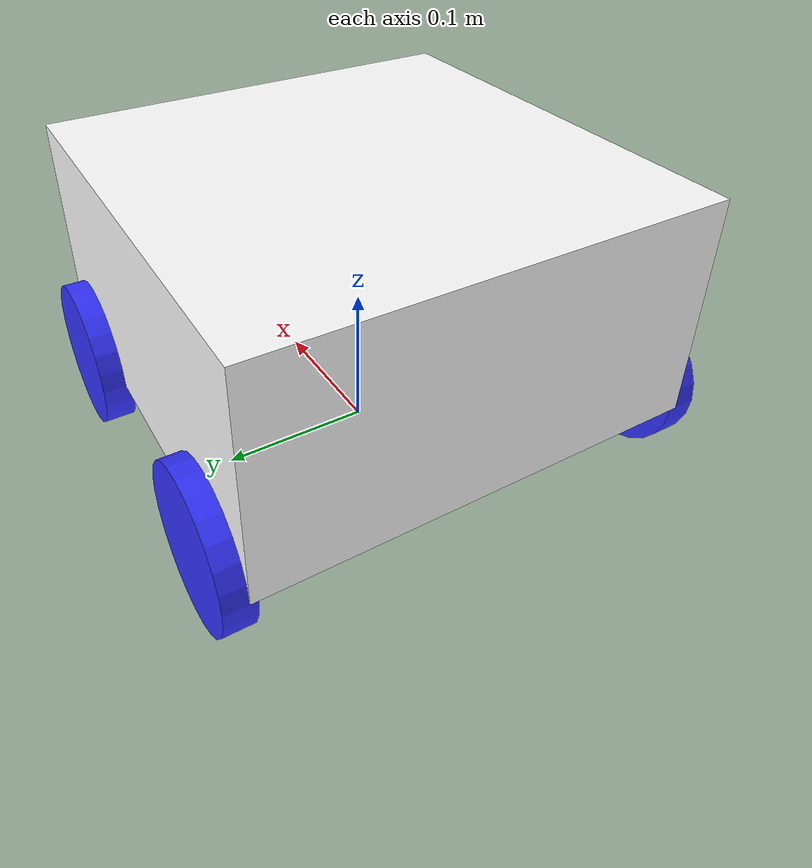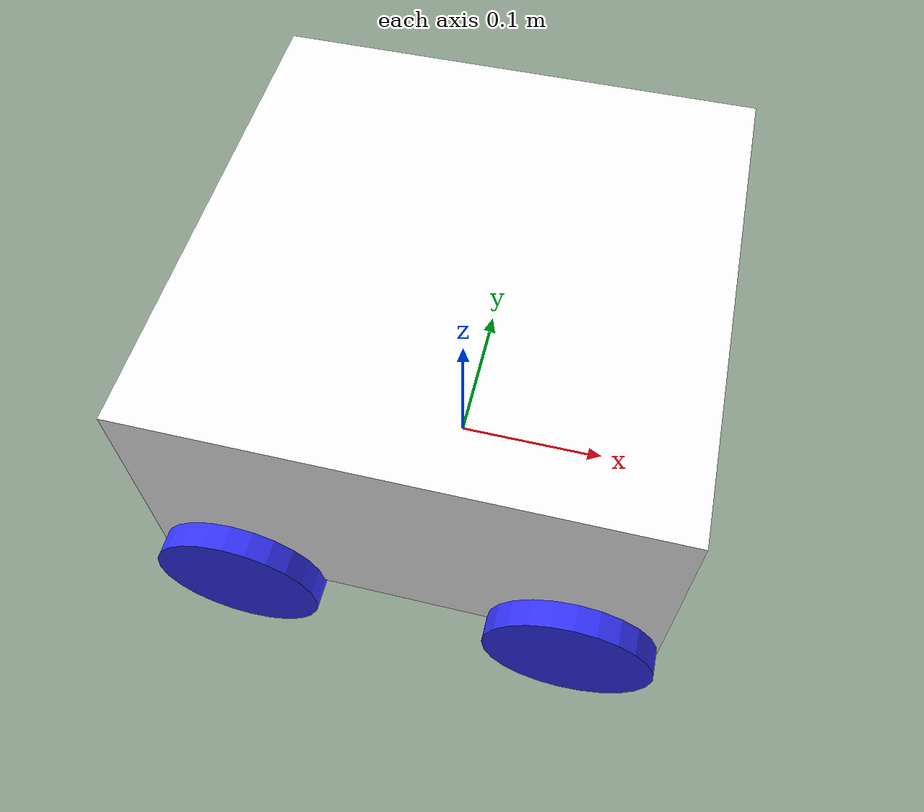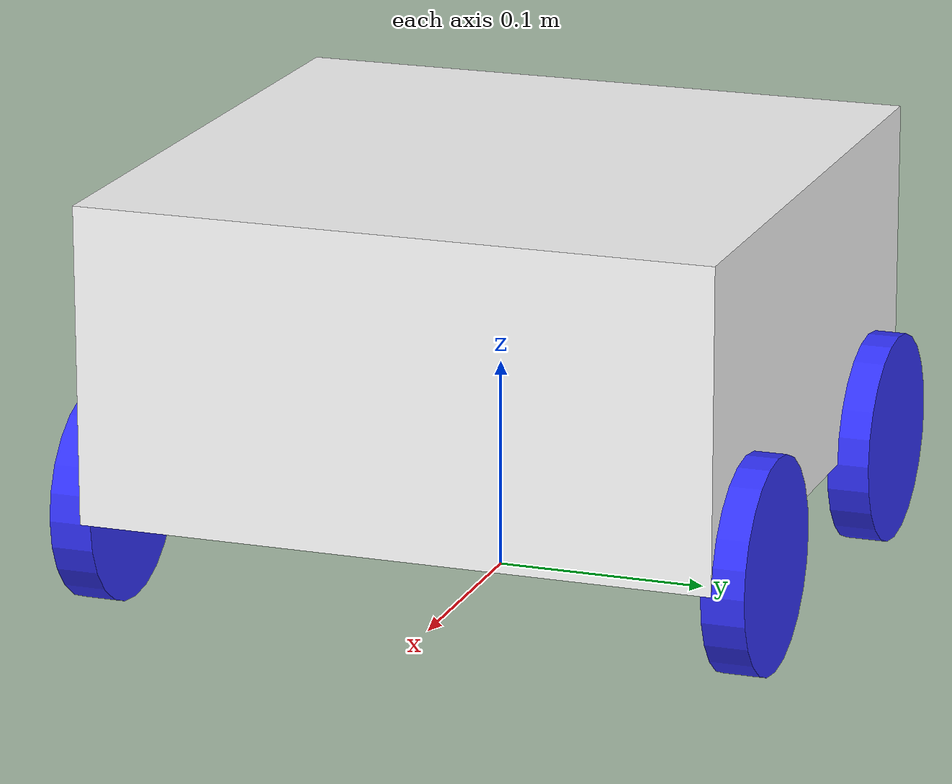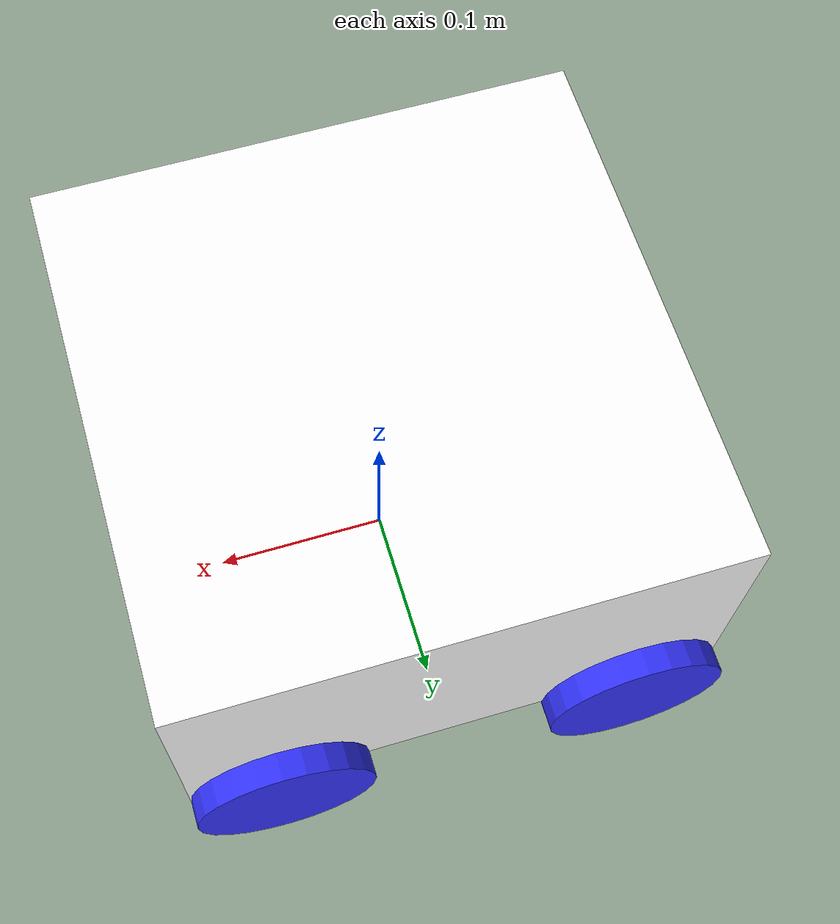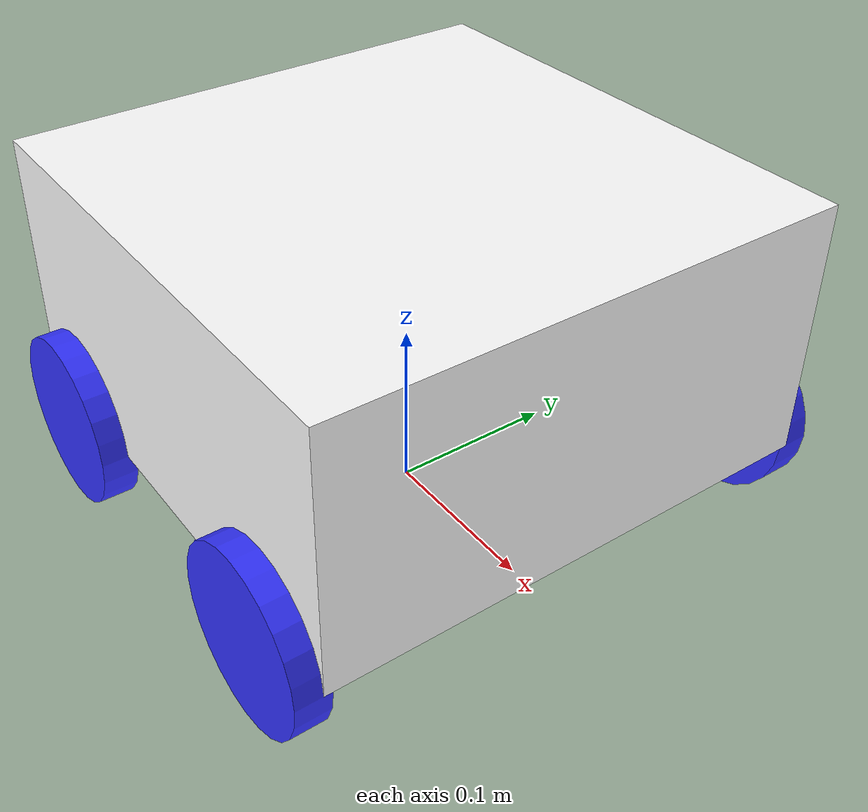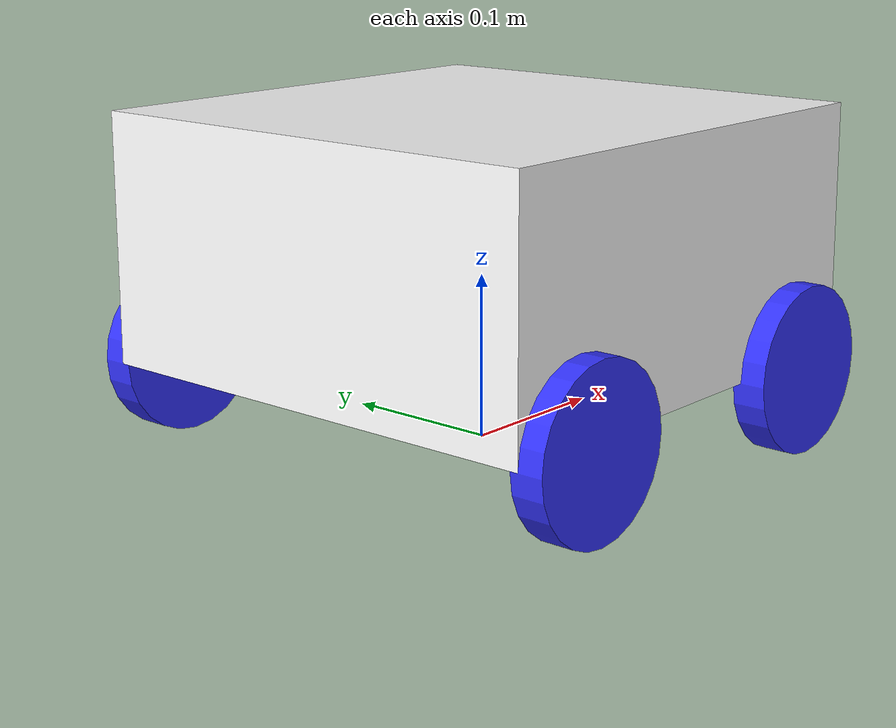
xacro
<?xml version="1.0"?>
<robot xmlns:xacro="http://www.ros.org/wiki/xacro" >

    <xacro:include filename="inertial_macros.xacro"/>

    <material name="white">
        <color rgba="1 1 1 1" />
    </material>

    <material name="orange">
        <color rgba="1 0.3 0.1 1"/>
    </material>

    <material name="blue">
        <color rgba="0.2 0.2 1 1"/>
    </material>

    <material name="black">
        <color rgba="0 0 0 1"/>
    </material>

    <!-- BASE LINK -->

    <link name="base_link">

    </link>

    <!-- CHASSIS LINK -->

    <joint name="chassis_joint" type="fixed">
        <parent link="base_link"/>
        <child link="chassis"/>
        <origin xyz="0 0 0.125"/>
    </joint>

    <link name="chassis">
        <visual>
            <origin xyz="0 0 0"/>
            <geometry>
                <box size="0.3 0.3 0.15"/>
            </geometry>
            <material name="white"/>
        </visual>
        <collision>
            <origin xyz="0 0 0"/>
            <geometry>
                <box size="0.3 0.3 0.15"/>
            </geometry>
        </collision>
        <xacro:inertial_box mass="0.5" x="0.3" y="0.3" z="0.15">
            <origin xyz="0 0 0" rpy="0 0 0"/>
        </xacro:inertial_box>
    </link>

    <!-- LEFT WHEEL LINK -->

    <joint name="left_wheel_joint" type="continuous">
        <parent link="chassis"/>
        <child link="left_wheel"/>
        <origin xyz="0.10 0.155 -0.075" rpy="-${pi/2} 0 0" />
        <axis xyz="0 0 1"/>
    </joint>

    <link name="left_wheel">
        <visual>
            <geometry>
                <cylinder radius="0.05" length="0.02"/>
            </geometry>
            <material name="blue"/>
        </visual>
        <collision>
            <geometry>
                <cylinder radius="0.05" length="0.02"/>
            </geometry>
        </collision>
        <xacro:inertial_cylinder mass="0.1" length="0.02" radius="0.05">
            <origin xyz="0 0 0" rpy="0 0 0"/>
        </xacro:inertial_cylinder>
    </link>

    <joint name="left_wheel_back_joint" type="continuous">
        <parent link="chassis"/>
        <child link="left_wheel_back"/>
        <origin xyz="-0.10 0.155 -0.075" rpy="-${pi/2} 0 0" />
        <axis xyz="0 0 1"/>
    </joint>

    <link name="left_wheel_back">
        <visual>
            <geometry>
                <cylinder radius="0.05" length="0.02"/>
            </geometry>
            <material name="blue"/>
        </visual>
        <collision>
            <geometry>
                <cylinder radius="0.05" length="0.02"/>
            </geometry>
        </collision>
        <xacro:inertial_cylinder mass="0.1" length="0.02" radius="0.05">
            <origin xyz="0 0 0" rpy="0 0 0"/>
        </xacro:inertial_cylinder>
    </link>

    <!-- RIGHT WHEEL LINK -->

    <joint name="right_wheel_joint" type="continuous">
        <parent link="chassis"/>
        <child link="right_wheel"/>
        <origin xyz="0.10 -0.155 -0.075" rpy="${pi/2} 0 0" />
        <axis xyz="0 0 -1"/>
    </joint>

    <link name="right_wheel">
        <visual>
            <geometry>
                <cylinder radius="0.05" length="0.02"/>
            </geometry>
            <material name="blue"/>
        </visual>
        <collision>
            <geometry>
                <cylinder radius="0.05" length="0.02"/>
            </geometry>
        </collision>
        <xacro:inertial_cylinder mass="0.1" length="0.02" radius="0.05">
            <origin xyz="0 0 0" rpy="0 0 0"/>
        </xacro:inertial_cylinder>
    </link>

    <joint name="right_wheel_back_joint" type="continuous">
        <parent link="chassis"/>
        <child link="right_wheel_back"/>
        <origin xyz="-0.10 -0.155 -0.075" rpy="${pi/2} 0 0" />
        <axis xyz="0 0 -1"/>
    </joint>

    <link name="right_wheel_back">
        <visual>
            <geometry>
                <cylinder radius="0.05" length="0.02"/>
            </geometry>
            <material name="blue"/>
        </visual>
        <collision>
            <geometry>
                <cylinder radius="0.05" length="0.02"/>
            </geometry>
        </collision>
        <xacro:inertial_cylinder mass="0.1" length="0.02" radius="0.05">
            <origin xyz="0 0 0" rpy="0 0 0"/>
        </xacro:inertial_cylinder>
    </link>

</robot>
